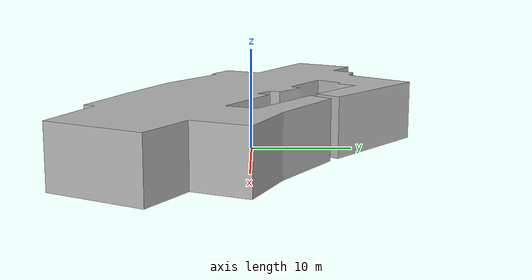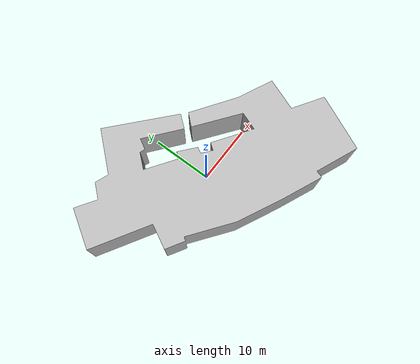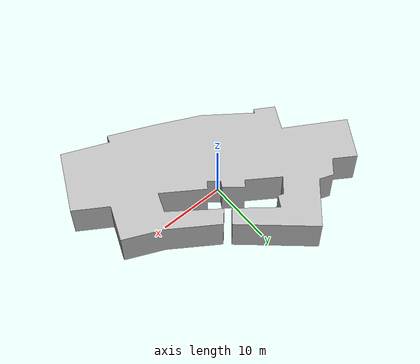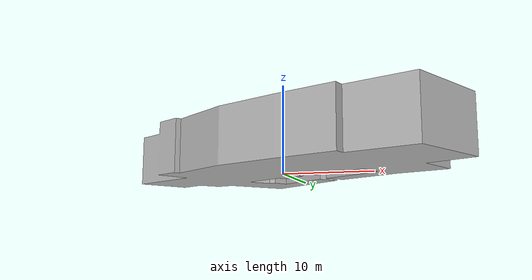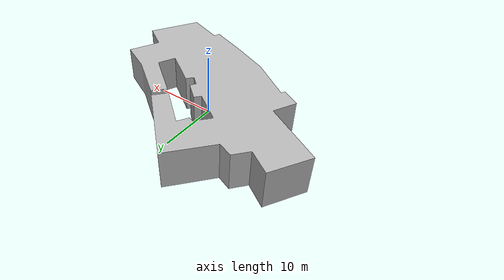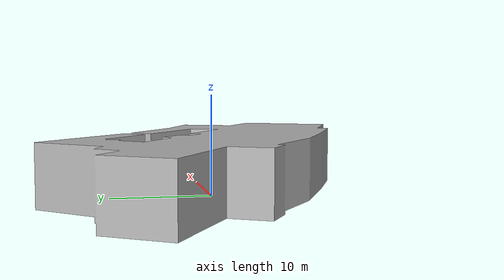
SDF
<?xml version="1.0" ?>
<sdf version="1.7">
  <model name="building_5567_assumed_a_casa">
    <static>true</static>
    <link name="building_link">
      <visual name="building_visual">
        <geometry>
          <mesh>
            <uri>model://building_5567_assumed_a_casa/meshes/construction_5567_assumed_A_Casa_h6m.obj</uri>
          </mesh>
        </geometry>
      </visual>
    <collision name="building_collision">
      <geometry>
        <mesh>
          <uri>model://building_5567_assumed_a_casa/meshes/construction_5567_assumed_A_Casa_h6m.obj</uri>
        </mesh>
      </geometry>
    </collision>
    </link>
  </model>
</sdf>
